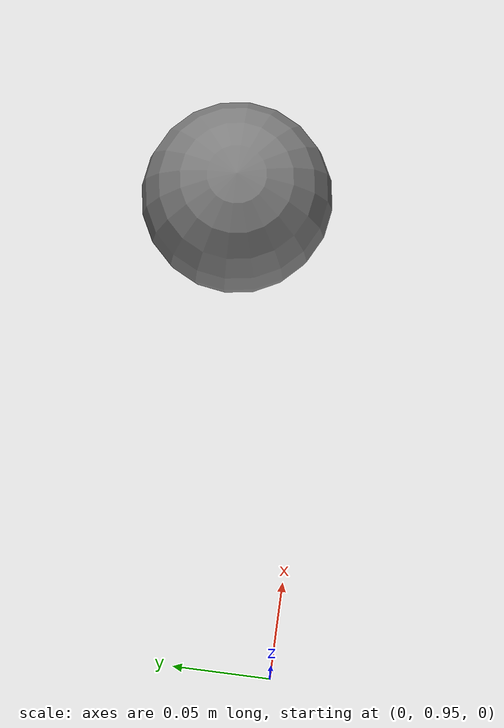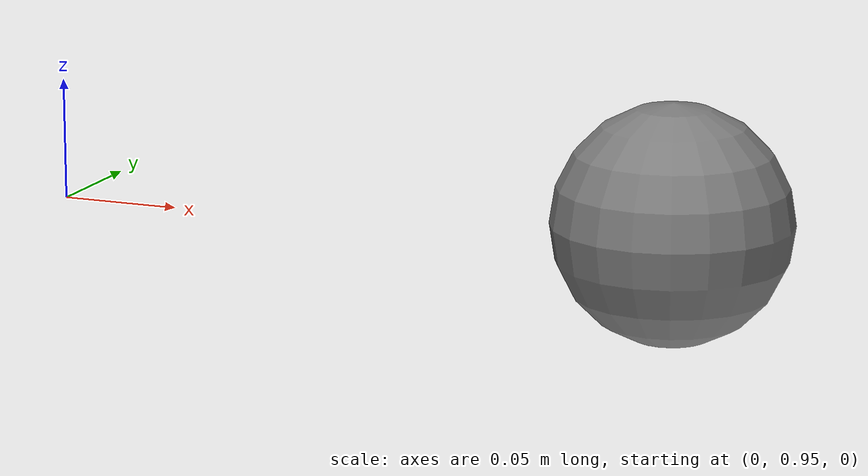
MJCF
<mujoco>
  <option gravity="0 -9.81 0"/>
  <worldbody>
    <body name="pendulum" pos="0 1 0">
      <joint name="hinge" type="hinge" axis="0 0 1" damping="0" frictionloss="0"/>
      <geom name="rod" type="capsule" fromto="0 0 0 0.2485 0 0" size="0" mass="0" contype="0" conaffinity="0"/>
      <body name="bob" pos="0.2485 0 0">
        <geom name="bob_geom" type="sphere" size="0.05" mass="1.0"/>
      </body>
    </body>
  </worldbody>
</mujoco>
